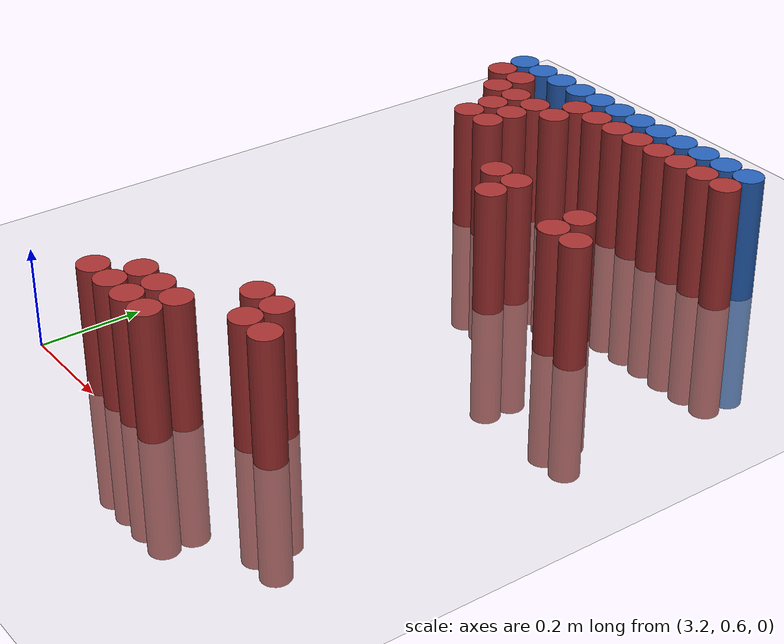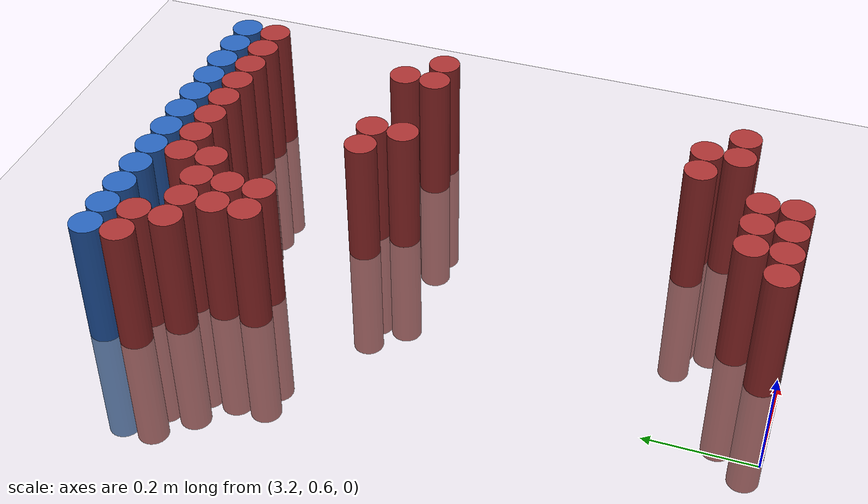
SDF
<sdf version="1.6">
 <world name="default">
  <model name="ground_plane">
   <static>1</static>
   <link name="link">
    <collision name="collision">
     <geometry><plane><normal>0 0 1</normal><size>100 100</size></plane></geometry>
     <surface><friction><ode><mu>100</mu><mu2>50</mu2></ode></friction></surface>
    </collision>
    <visual name="visual">
     <cast_shadows>0</cast_shadows>
     <geometry><plane><normal>0 0 1</normal><size>100 100</size></plane></geometry>
     <material>
      <script><uri>file://media/materials/scripts/gazebo.material</uri><name>Gazebo/Grey</name></script>
     </material>
    </visual>
   </link>
  </model>
  <model name="unit_cylinder_113">
   <static>1</static>
   <pose>3.150000 1.770000 0.000000 0.000000 0.000000 0.000000</pose>
   <link name="link">
    <inertial>
     <mass>1</mass>
     <inertia><ixx>0.145833</ixx><ixy>0</ixy><ixz>0</ixz><iyy>0.145833</iyy><iyz>0</iyz><izz>0.125</izz></inertia>
    </inertial>
    <collision name="collision">
     <geometry><cylinder><radius>0.030000</radius><length>0.5</length></cylinder></geometry>
    </collision>
    <visual name="visual">
     <geometry><cylinder><radius>0.030000</radius><length>0.5</length></cylinder></geometry>
     <material>
      <ambient>0.152000 0.379000 0.720000 1</ambient>
      <diffuse>0.152000 0.379000 0.720000 1</diffuse>
     </material>
     <material>
      <script><name>Gazebo/Grey</name><uri>file://media/materials/scripts/gazebo.material</uri></script>
     </material>
    </visual>
   </link>
  </model>
  <model name="unit_cylinder_114">
   <static>1</static>
   <pose>3.210000 1.770000 0.000000 0.000000 0.000000 0.000000</pose>
   <link name="link">
    <inertial>
     <mass>1</mass>
     <inertia><ixx>0.145833</ixx><ixy>0</ixy><ixz>0</ixz><iyy>0.145833</iyy><iyz>0</iyz><izz>0.125</izz></inertia>
    </inertial>
    <collision name="collision">
     <geometry><cylinder><radius>0.030000</radius><length>0.5</length></cylinder></geometry>
    </collision>
    <visual name="visual">
     <geometry><cylinder><radius>0.030000</radius><length>0.5</length></cylinder></geometry>
     <material>
      <ambient>0.152000 0.379000 0.720000 1</ambient>
      <diffuse>0.152000 0.379000 0.720000 1</diffuse>
     </material>
     <material>
      <script><name>Gazebo/Grey</name><uri>file://media/materials/scripts/gazebo.material</uri></script>
     </material>
    </visual>
   </link>
  </model>
  <model name="unit_cylinder_115">
   <static>1</static>
   <pose>3.270000 1.770000 0.000000 0.000000 0.000000 0.000000</pose>
   <link name="link">
    <inertial>
     <mass>1</mass>
     <inertia><ixx>0.145833</ixx><ixy>0</ixy><ixz>0</ixz><iyy>0.145833</iyy><iyz>0</iyz><izz>0.125</izz></inertia>
    </inertial>
    <collision name="collision">
     <geometry><cylinder><radius>0.030000</radius><length>0.5</length></cylinder></geometry>
    </collision>
    <visual name="visual">
     <geometry><cylinder><radius>0.030000</radius><length>0.5</length></cylinder></geometry>
     <material>
      <ambient>0.152000 0.379000 0.720000 1</ambient>
      <diffuse>0.152000 0.379000 0.720000 1</diffuse>
     </material>
     <material>
      <script><name>Gazebo/Grey</name><uri>file://media/materials/scripts/gazebo.material</uri></script>
     </material>
    </visual>
   </link>
  </model>
  <model name="unit_cylinder_116">
   <static>1</static>
   <pose>3.330000 1.770000 0.000000 0.000000 0.000000 0.000000</pose>
   <link name="link">
    <inertial>
     <mass>1</mass>
     <inertia><ixx>0.145833</ixx><ixy>0</ixy><ixz>0</ixz><iyy>0.145833</iyy><iyz>0</iyz><izz>0.125</izz></inertia>
    </inertial>
    <collision name="collision">
     <geometry><cylinder><radius>0.030000</radius><length>0.5</length></cylinder></geometry>
    </collision>
    <visual name="visual">
     <geometry><cylinder><radius>0.030000</radius><length>0.5</length></cylinder></geometry>
     <material>
      <ambient>0.152000 0.379000 0.720000 1</ambient>
      <diffuse>0.152000 0.379000 0.720000 1</diffuse>
     </material>
     <material>
      <script><name>Gazebo/Grey</name><uri>file://media/materials/scripts/gazebo.material</uri></script>
     </material>
    </visual>
   </link>
  </model>
  <model name="unit_cylinder_117">
   <static>1</static>
   <pose>3.390000 1.770000 0.000000 0.000000 0.000000 0.000000</pose>
   <link name="link">
    <inertial>
     <mass>1</mass>
     <inertia><ixx>0.145833</ixx><ixy>0</ixy><ixz>0</ixz><iyy>0.145833</iyy><iyz>0</iyz><izz>0.125</izz></inertia>
    </inertial>
    <collision name="collision">
     <geometry><cylinder><radius>0.030000</radius><length>0.5</length></cylinder></geometry>
    </collision>
    <visual name="visual">
     <geometry><cylinder><radius>0.030000</radius><length>0.5</length></cylinder></geometry>
     <material>
      <ambient>0.152000 0.379000 0.720000 1</ambient>
      <diffuse>0.152000 0.379000 0.720000 1</diffuse>
     </material>
     <material>
      <script><name>Gazebo/Grey</name><uri>file://media/materials/scripts/gazebo.material</uri></script>
     </material>
    </visual>
   </link>
  </model>
  <model name="unit_cylinder_118">
   <static>1</static>
   <pose>3.450000 1.770000 0.000000 0.000000 0.000000 0.000000</pose>
   <link name="link">
    <inertial>
     <mass>1</mass>
     <inertia><ixx>0.145833</ixx><ixy>0</ixy><ixz>0</ixz><iyy>0.145833</iyy><iyz>0</iyz><izz>0.125</izz></inertia>
    </inertial>
    <collision name="collision">
     <geometry><cylinder><radius>0.030000</radius><length>0.5</length></cylinder></geometry>
    </collision>
    <visual name="visual">
     <geometry><cylinder><radius>0.030000</radius><length>0.5</length></cylinder></geometry>
     <material>
      <ambient>0.152000 0.379000 0.720000 1</ambient>
      <diffuse>0.152000 0.379000 0.720000 1</diffuse>
     </material>
     <material>
      <script><name>Gazebo/Grey</name><uri>file://media/materials/scripts/gazebo.material</uri></script>
     </material>
    </visual>
   </link>
  </model>
  <model name="unit_cylinder_119">
   <static>1</static>
   <pose>3.510000 1.770000 0.000000 0.000000 0.000000 0.000000</pose>
   <link name="link">
    <inertial>
     <mass>1</mass>
     <inertia><ixx>0.145833</ixx><ixy>0</ixy><ixz>0</ixz><iyy>0.145833</iyy><iyz>0</iyz><izz>0.125</izz></inertia>
    </inertial>
    <collision name="collision">
     <geometry><cylinder><radius>0.030000</radius><length>0.5</length></cylinder></geometry>
    </collision>
    <visual name="visual">
     <geometry><cylinder><radius>0.030000</radius><length>0.5</length></cylinder></geometry>
     <material>
      <ambient>0.152000 0.379000 0.720000 1</ambient>
      <diffuse>0.152000 0.379000 0.720000 1</diffuse>
     </material>
     <material>
      <script><name>Gazebo/Grey</name><uri>file://media/materials/scripts/gazebo.material</uri></script>
     </material>
    </visual>
   </link>
  </model>
  <model name="unit_cylinder_120">
   <static>1</static>
   <pose>3.570000 1.770000 0.000000 0.000000 0.000000 0.000000</pose>
   <link name="link">
    <inertial>
     <mass>1</mass>
     <inertia><ixx>0.145833</ixx><ixy>0</ixy><ixz>0</ixz><iyy>0.145833</iyy><iyz>0</iyz><izz>0.125</izz></inertia>
    </inertial>
    <collision name="collision">
     <geometry><cylinder><radius>0.030000</radius><length>0.5</length></cylinder></geometry>
    </collision>
    <visual name="visual">
     <geometry><cylinder><radius>0.030000</radius><length>0.5</length></cylinder></geometry>
     <material>
      <ambient>0.152000 0.379000 0.720000 1</ambient>
      <diffuse>0.152000 0.379000 0.720000 1</diffuse>
     </material>
     <material>
      <script><name>Gazebo/Grey</name><uri>file://media/materials/scripts/gazebo.material</uri></script>
     </material>
    </visual>
   </link>
  </model>
  <model name="unit_cylinder_121">
   <static>1</static>
   <pose>3.630000 1.770000 0.000000 0.000000 0.000000 0.000000</pose>
   <link name="link">
    <inertial>
     <mass>1</mass>
     <inertia><ixx>0.145833</ixx><ixy>0</ixy><ixz>0</ixz><iyy>0.145833</iyy><iyz>0</iyz><izz>0.125</izz></inertia>
    </inertial>
    <collision name="collision">
     <geometry><cylinder><radius>0.030000</radius><length>0.5</length></cylinder></geometry>
    </collision>
    <visual name="visual">
     <geometry><cylinder><radius>0.030000</radius><length>0.5</length></cylinder></geometry>
     <material>
      <ambient>0.152000 0.379000 0.720000 1</ambient>
      <diffuse>0.152000 0.379000 0.720000 1</diffuse>
     </material>
     <material>
      <script><name>Gazebo/Grey</name><uri>file://media/materials/scripts/gazebo.material</uri></script>
     </material>
    </visual>
   </link>
  </model>
  <model name="unit_cylinder_122">
   <static>1</static>
   <pose>3.690000 1.770000 0.000000 0.000000 0.000000 0.000000</pose>
   <link name="link">
    <inertial>
     <mass>1</mass>
     <inertia><ixx>0.145833</ixx><ixy>0</ixy><ixz>0</ixz><iyy>0.145833</iyy><iyz>0</iyz><izz>0.125</izz></inertia>
    </inertial>
    <collision name="collision">
     <geometry><cylinder><radius>0.030000</radius><length>0.5</length></cylinder></geometry>
    </collision>
    <visual name="visual">
     <geometry><cylinder><radius>0.030000</radius><length>0.5</length></cylinder></geometry>
     <material>
      <ambient>0.152000 0.379000 0.720000 1</ambient>
      <diffuse>0.152000 0.379000 0.720000 1</diffuse>
     </material>
     <material>
      <script><name>Gazebo/Grey</name><uri>file://media/materials/scripts/gazebo.material</uri></script>
     </material>
    </visual>
   </link>
  </model>
  <model name="unit_cylinder_123">
   <static>1</static>
   <pose>3.750000 1.770000 0.000000 0.000000 0.000000 0.000000</pose>
   <link name="link">
    <inertial>
     <mass>1</mass>
     <inertia><ixx>0.145833</ixx><ixy>0</ixy><ixz>0</ixz><iyy>0.145833</iyy><iyz>0</iyz><izz>0.125</izz></inertia>
    </inertial>
    <collision name="collision">
     <geometry><cylinder><radius>0.030000</radius><length>0.5</length></cylinder></geometry>
    </collision>
    <visual name="visual">
     <geometry><cylinder><radius>0.030000</radius><length>0.5</length></cylinder></geometry>
     <material>
      <ambient>0.152000 0.379000 0.720000 1</ambient>
      <diffuse>0.152000 0.379000 0.720000 1</diffuse>
     </material>
     <material>
      <script><name>Gazebo/Grey</name><uri>file://media/materials/scripts/gazebo.material</uri></script>
     </material>
    </visual>
   </link>
  </model>
  <model name="unit_cylinder_124">
   <static>1</static>
   <pose>3.810000 1.770000 0.000000 0.000000 0.000000 0.000000</pose>
   <link name="link">
    <inertial>
     <mass>1</mass>
     <inertia><ixx>0.145833</ixx><ixy>0</ixy><ixz>0</ixz><iyy>0.145833</iyy><iyz>0</iyz><izz>0.125</izz></inertia>
    </inertial>
    <collision name="collision">
     <geometry><cylinder><radius>0.030000</radius><length>0.5</length></cylinder></geometry>
    </collision>
    <visual name="visual">
     <geometry><cylinder><radius>0.030000</radius><length>0.5</length></cylinder></geometry>
     <material>
      <ambient>0.152000 0.379000 0.720000 1</ambient>
      <diffuse>0.152000 0.379000 0.720000 1</diffuse>
     </material>
     <material>
      <script><name>Gazebo/Grey</name><uri>file://media/materials/scripts/gazebo.material</uri></script>
     </material>
    </visual>
   </link>
  </model>
  <model name="unit_cylinder_127">
   <static>1</static>
   <pose>3.150000 1.710000 0.000000 0.000000 0.000000 0.000000</pose>
   <link name="link">
    <inertial>
     <mass>1</mass>
     <inertia><ixx>0.145833</ixx><ixy>0</ixy><ixz>0</ixz><iyy>0.145833</iyy><iyz>0</iyz><izz>0.125</izz></inertia>
    </inertial>
    <collision name="collision">
     <geometry><cylinder><radius>0.030000</radius><length>0.5</length></cylinder></geometry>
    </collision>
    <visual name="visual">
     <geometry><cylinder><radius>0.030000</radius><length>0.5</length></cylinder></geometry>
     <material>
      <ambient>0.648000 0.192000 0.192000 1</ambient>
      <diffuse>0.648000 0.192000 0.192000 1</diffuse>
     </material>
     <material>
      <script><name>Gazebo/Grey</name><uri>file://media/materials/scripts/gazebo.material</uri></script>
     </material>
    </visual>
   </link>
  </model>
  <model name="unit_cylinder_128">
   <static>1</static>
   <pose>3.210000 1.710000 0.000000 0.000000 0.000000 0.000000</pose>
   <link name="link">
    <inertial>
     <mass>1</mass>
     <inertia><ixx>0.145833</ixx><ixy>0</ixy><ixz>0</ixz><iyy>0.145833</iyy><iyz>0</iyz><izz>0.125</izz></inertia>
    </inertial>
    <collision name="collision">
     <geometry><cylinder><radius>0.030000</radius><length>0.5</length></cylinder></geometry>
    </collision>
    <visual name="visual">
     <geometry><cylinder><radius>0.030000</radius><length>0.5</length></cylinder></geometry>
     <material>
      <ambient>0.648000 0.192000 0.192000 1</ambient>
      <diffuse>0.648000 0.192000 0.192000 1</diffuse>
     </material>
     <material>
      <script><name>Gazebo/Grey</name><uri>file://media/materials/scripts/gazebo.material</uri></script>
     </material>
    </visual>
   </link>
  </model>
  <model name="unit_cylinder_129">
   <static>1</static>
   <pose>3.390000 1.710000 0.000000 0.000000 0.000000 0.000000</pose>
   <link name="link">
    <inertial>
     <mass>1</mass>
     <inertia><ixx>0.145833</ixx><ixy>0</ixy><ixz>0</ixz><iyy>0.145833</iyy><iyz>0</iyz><izz>0.125</izz></inertia>
    </inertial>
    <collision name="collision">
     <geometry><cylinder><radius>0.030000</radius><length>0.5</length></cylinder></geometry>
    </collision>
    <visual name="visual">
     <geometry><cylinder><radius>0.030000</radius><length>0.5</length></cylinder></geometry>
     <material>
      <ambient>0.648000 0.192000 0.192000 1</ambient>
      <diffuse>0.648000 0.192000 0.192000 1</diffuse>
     </material>
     <material>
      <script><name>Gazebo/Grey</name><uri>file://media/materials/scripts/gazebo.material</uri></script>
     </material>
    </visual>
   </link>
  </model>
  <model name="unit_cylinder_130">
   <static>1</static>
   <pose>3.450000 1.710000 0.000000 0.000000 0.000000 0.000000</pose>
   <link name="link">
    <inertial>
     <mass>1</mass>
     <inertia><ixx>0.145833</ixx><ixy>0</ixy><ixz>0</ixz><iyy>0.145833</iyy><iyz>0</iyz><izz>0.125</izz></inertia>
    </inertial>
    <collision name="collision">
     <geometry><cylinder><radius>0.030000</radius><length>0.5</length></cylinder></geometry>
    </collision>
    <visual name="visual">
     <geometry><cylinder><radius>0.030000</radius><length>0.5</length></cylinder></geometry>
     <material>
      <ambient>0.648000 0.192000 0.192000 1</ambient>
      <diffuse>0.648000 0.192000 0.192000 1</diffuse>
     </material>
     <material>
      <script><name>Gazebo/Grey</name><uri>file://media/materials/scripts/gazebo.material</uri></script>
     </material>
    </visual>
   </link>
  </model>
  <model name="unit_cylinder_131">
   <static>1</static>
   <pose>3.510000 1.710000 0.000000 0.000000 0.000000 0.000000</pose>
   <link name="link">
    <inertial>
     <mass>1</mass>
     <inertia><ixx>0.145833</ixx><ixy>0</ixy><ixz>0</ixz><iyy>0.145833</iyy><iyz>0</iyz><izz>0.125</izz></inertia>
    </inertial>
    <collision name="collision">
     <geometry><cylinder><radius>0.030000</radius><length>0.5</length></cylinder></geometry>
    </collision>
    <visual name="visual">
     <geometry><cylinder><radius>0.030000</radius><length>0.5</length></cylinder></geometry>
     <material>
      <ambient>0.648000 0.192000 0.192000 1</ambient>
      <diffuse>0.648000 0.192000 0.192000 1</diffuse>
     </material>
     <material>
      <script><name>Gazebo/Grey</name><uri>file://media/materials/scripts/gazebo.material</uri></script>
     </material>
    </visual>
   </link>
  </model>
  <model name="unit_cylinder_132">
   <static>1</static>
   <pose>3.570000 1.710000 0.000000 0.000000 0.000000 0.000000</pose>
   <link name="link">
    <inertial>
     <mass>1</mass>
     <inertia><ixx>0.145833</ixx><ixy>0</ixy><ixz>0</ixz><iyy>0.145833</iyy><iyz>0</iyz><izz>0.125</izz></inertia>
    </inertial>
    <collision name="collision">
     <geometry><cylinder><radius>0.030000</radius><length>0.5</length></cylinder></geometry>
    </collision>
    <visual name="visual">
     <geometry><cylinder><radius>0.030000</radius><length>0.5</length></cylinder></geometry>
     <material>
      <ambient>0.648000 0.192000 0.192000 1</ambient>
      <diffuse>0.648000 0.192000 0.192000 1</diffuse>
     </material>
     <material>
      <script><name>Gazebo/Grey</name><uri>file://media/materials/scripts/gazebo.material</uri></script>
     </material>
    </visual>
   </link>
  </model>
  <model name="unit_cylinder_133">
   <static>1</static>
   <pose>3.630000 1.710000 0.000000 0.000000 0.000000 0.000000</pose>
   <link name="link">
    <inertial>
     <mass>1</mass>
     <inertia><ixx>0.145833</ixx><ixy>0</ixy><ixz>0</ixz><iyy>0.145833</iyy><iyz>0</iyz><izz>0.125</izz></inertia>
    </inertial>
    <collision name="collision">
     <geometry><cylinder><radius>0.030000</radius><length>0.5</length></cylinder></geometry>
    </collision>
    <visual name="visual">
     <geometry><cylinder><radius>0.030000</radius><length>0.5</length></cylinder></geometry>
     <material>
      <ambient>0.648000 0.192000 0.192000 1</ambient>
      <diffuse>0.648000 0.192000 0.192000 1</diffuse>
     </material>
     <material>
      <script><name>Gazebo/Grey</name><uri>file://media/materials/scripts/gazebo.material</uri></script>
     </material>
    </visual>
   </link>
  </model>
  <model name="unit_cylinder_134">
   <static>1</static>
   <pose>3.690000 1.710000 0.000000 0.000000 0.000000 0.000000</pose>
   <link name="link">
    <inertial>
     <mass>1</mass>
     <inertia><ixx>0.145833</ixx><ixy>0</ixy><ixz>0</ixz><iyy>0.145833</iyy><iyz>0</iyz><izz>0.125</izz></inertia>
    </inertial>
    <collision name="collision">
     <geometry><cylinder><radius>0.030000</radius><length>0.5</length></cylinder></geometry>
    </collision>
    <visual name="visual">
     <geometry><cylinder><radius>0.030000</radius><length>0.5</length></cylinder></geometry>
     <material>
      <ambient>0.648000 0.192000 0.192000 1</ambient>
      <diffuse>0.648000 0.192000 0.192000 1</diffuse>
     </material>
     <material>
      <script><name>Gazebo/Grey</name><uri>file://media/materials/scripts/gazebo.material</uri></script>
     </material>
    </visual>
   </link>
  </model>
  <model name="unit_cylinder_135">
   <static>1</static>
   <pose>3.750000 1.710000 0.000000 0.000000 0.000000 0.000000</pose>
   <link name="link">
    <inertial>
     <mass>1</mass>
     <inertia><ixx>0.145833</ixx><ixy>0</ixy><ixz>0</ixz><iyy>0.145833</iyy><iyz>0</iyz><izz>0.125</izz></inertia>
    </inertial>
    <collision name="collision">
     <geometry><cylinder><radius>0.030000</radius><length>0.5</length></cylinder></geometry>
    </collision>
    <visual name="visual">
     <geometry><cylinder><radius>0.030000</radius><length>0.5</length></cylinder></geometry>
     <material>
      <ambient>0.648000 0.192000 0.192000 1</ambient>
      <diffuse>0.648000 0.192000 0.192000 1</diffuse>
     </material>
     <material>
      <script><name>Gazebo/Grey</name><uri>file://media/materials/scripts/gazebo.material</uri></script>
     </material>
    </visual>
   </link>
  </model>
  <model name="unit_cylinder_136">
   <static>1</static>
   <pose>3.810000 1.710000 0.000000 0.000000 0.000000 0.000000</pose>
   <link name="link">
    <inertial>
     <mass>1</mass>
     <inertia><ixx>0.145833</ixx><ixy>0</ixy><ixz>0</ixz><iyy>0.145833</iyy><iyz>0</iyz><izz>0.125</izz></inertia>
    </inertial>
    <collision name="collision">
     <geometry><cylinder><radius>0.030000</radius><length>0.5</length></cylinder></geometry>
    </collision>
    <visual name="visual">
     <geometry><cylinder><radius>0.030000</radius><length>0.5</length></cylinder></geometry>
     <material>
      <ambient>0.648000 0.192000 0.192000 1</ambient>
      <diffuse>0.648000 0.192000 0.192000 1</diffuse>
     </material>
     <material>
      <script><name>Gazebo/Grey</name><uri>file://media/materials/scripts/gazebo.material</uri></script>
     </material>
    </visual>
   </link>
  </model>
  <model name="unit_cylinder_139">
   <static>1</static>
   <pose>3.210000 1.650000 0.000000 0.000000 0.000000 0.000000</pose>
   <link name="link">
    <inertial>
     <mass>1</mass>
     <inertia><ixx>0.145833</ixx><ixy>0</ixy><ixz>0</ixz><iyy>0.145833</iyy><iyz>0</iyz><izz>0.125</izz></inertia>
    </inertial>
    <collision name="collision">
     <geometry><cylinder><radius>0.030000</radius><length>0.5</length></cylinder></geometry>
    </collision>
    <visual name="visual">
     <geometry><cylinder><radius>0.030000</radius><length>0.5</length></cylinder></geometry>
     <material>
      <ambient>0.648000 0.192000 0.192000 1</ambient>
      <diffuse>0.648000 0.192000 0.192000 1</diffuse>
     </material>
     <material>
      <script><name>Gazebo/Grey</name><uri>file://media/materials/scripts/gazebo.material</uri></script>
     </material>
    </visual>
   </link>
  </model>
  <model name="unit_cylinder_140">
   <static>1</static>
   <pose>3.270000 1.650000 0.000000 0.000000 0.000000 0.000000</pose>
   <link name="link">
    <inertial>
     <mass>1</mass>
     <inertia><ixx>0.145833</ixx><ixy>0</ixy><ixz>0</ixz><iyy>0.145833</iyy><iyz>0</iyz><izz>0.125</izz></inertia>
    </inertial>
    <collision name="collision">
     <geometry><cylinder><radius>0.030000</radius><length>0.5</length></cylinder></geometry>
    </collision>
    <visual name="visual">
     <geometry><cylinder><radius>0.030000</radius><length>0.5</length></cylinder></geometry>
     <material>
      <ambient>0.648000 0.192000 0.192000 1</ambient>
      <diffuse>0.648000 0.192000 0.192000 1</diffuse>
     </material>
     <material>
      <script><name>Gazebo/Grey</name><uri>file://media/materials/scripts/gazebo.material</uri></script>
     </material>
    </visual>
   </link>
  </model>
  <model name="unit_cylinder_141">
   <static>1</static>
   <pose>3.330000 1.650000 0.000000 0.000000 0.000000 0.000000</pose>
   <link name="link">
    <inertial>
     <mass>1</mass>
     <inertia><ixx>0.145833</ixx><ixy>0</ixy><ixz>0</ixz><iyy>0.145833</iyy><iyz>0</iyz><izz>0.125</izz></inertia>
    </inertial>
    <collision name="collision">
     <geometry><cylinder><radius>0.030000</radius><length>0.5</length></cylinder></geometry>
    </collision>
    <visual name="visual">
     <geometry><cylinder><radius>0.030000</radius><length>0.5</length></cylinder></geometry>
     <material>
      <ambient>0.648000 0.192000 0.192000 1</ambient>
      <diffuse>0.648000 0.192000 0.192000 1</diffuse>
     </material>
     <material>
      <script><name>Gazebo/Grey</name><uri>file://media/materials/scripts/gazebo.material</uri></script>
     </material>
    </visual>
   </link>
  </model>
  <model name="unit_cylinder_142">
   <static>1</static>
   <pose>3.390000 1.650000 0.000000 0.000000 0.000000 0.000000</pose>
   <link name="link">
    <inertial>
     <mass>1</mass>
     <inertia><ixx>0.145833</ixx><ixy>0</ixy><ixz>0</ixz><iyy>0.145833</iyy><iyz>0</iyz><izz>0.125</izz></inertia>
    </inertial>
    <collision name="collision">
     <geometry><cylinder><radius>0.030000</radius><length>0.5</length></cylinder></geometry>
    </collision>
    <visual name="visual">
     <geometry><cylinder><radius>0.030000</radius><length>0.5</length></cylinder></geometry>
     <material>
      <ambient>0.648000 0.192000 0.192000 1</ambient>
      <diffuse>0.648000 0.192000 0.192000 1</diffuse>
     </material>
     <material>
      <script><name>Gazebo/Grey</name><uri>file://media/materials/scripts/gazebo.material</uri></script>
     </material>
    </visual>
   </link>
  </model>
  <model name="unit_cylinder_155">
   <static>1</static>
   <pose>3.270000 1.590000 0.000000 0.000000 0.000000 0.000000</pose>
   <link name="link">
    <inertial>
     <mass>1</mass>
     <inertia><ixx>0.145833</ixx><ixy>0</ixy><ixz>0</ixz><iyy>0.145833</iyy><iyz>0</iyz><izz>0.125</izz></inertia>
    </inertial>
    <collision name="collision">
     <geometry><cylinder><radius>0.030000</radius><length>0.5</length></cylinder></geometry>
    </collision>
    <visual name="visual">
     <geometry><cylinder><radius>0.030000</radius><length>0.5</length></cylinder></geometry>
     <material>
      <ambient>0.648000 0.192000 0.192000 1</ambient>
      <diffuse>0.648000 0.192000 0.192000 1</diffuse>
     </material>
     <material>
      <script><name>Gazebo/Grey</name><uri>file://media/materials/scripts/gazebo.material</uri></script>
     </material>
    </visual>
   </link>
  </model>
  <model name="unit_cylinder_156">
   <static>1</static>
   <pose>3.330000 1.590000 0.000000 0.000000 0.000000 0.000000</pose>
   <link name="link">
    <inertial>
     <mass>1</mass>
     <inertia><ixx>0.145833</ixx><ixy>0</ixy><ixz>0</ixz><iyy>0.145833</iyy><iyz>0</iyz><izz>0.125</izz></inertia>
    </inertial>
    <collision name="collision">
     <geometry><cylinder><radius>0.030000</radius><length>0.5</length></cylinder></geometry>
    </collision>
    <visual name="visual">
     <geometry><cylinder><radius>0.030000</radius><length>0.5</length></cylinder></geometry>
     <material>
      <ambient>0.648000 0.192000 0.192000 1</ambient>
      <diffuse>0.648000 0.192000 0.192000 1</diffuse>
     </material>
     <material>
      <script><name>Gazebo/Grey</name><uri>file://media/materials/scripts/gazebo.material</uri></script>
     </material>
    </visual>
   </link>
  </model>
  <model name="unit_cylinder_168">
   <static>1</static>
   <pose>3.270000 1.530000 0.000000 0.000000 0.000000 0.000000</pose>
   <link name="link">
    <inertial>
     <mass>1</mass>
     <inertia><ixx>0.145833</ixx><ixy>0</ixy><ixz>0</ixz><iyy>0.145833</iyy><iyz>0</iyz><izz>0.125</izz></inertia>
    </inertial>
    <collision name="collision">
     <geometry><cylinder><radius>0.030000</radius><length>0.5</length></cylinder></geometry>
    </collision>
    <visual name="visual">
     <geometry><cylinder><radius>0.030000</radius><length>0.5</length></cylinder></geometry>
     <material>
      <ambient>0.648000 0.192000 0.192000 1</ambient>
      <diffuse>0.648000 0.192000 0.192000 1</diffuse>
     </material>
     <material>
      <script><name>Gazebo/Grey</name><uri>file://media/materials/scripts/gazebo.material</uri></script>
     </material>
    </visual>
   </link>
  </model>
  <model name="unit_cylinder_169">
   <static>1</static>
   <pose>3.330000 1.530000 0.000000 0.000000 0.000000 0.000000</pose>
   <link name="link">
    <inertial>
     <mass>1</mass>
     <inertia><ixx>0.145833</ixx><ixy>0</ixy><ixz>0</ixz><iyy>0.145833</iyy><iyz>0</iyz><izz>0.125</izz></inertia>
    </inertial>
    <collision name="collision">
     <geometry><cylinder><radius>0.030000</radius><length>0.5</length></cylinder></geometry>
    </collision>
    <visual name="visual">
     <geometry><cylinder><radius>0.030000</radius><length>0.5</length></cylinder></geometry>
     <material>
      <ambient>0.648000 0.192000 0.192000 1</ambient>
      <diffuse>0.648000 0.192000 0.192000 1</diffuse>
     </material>
     <material>
      <script><name>Gazebo/Grey</name><uri>file://media/materials/scripts/gazebo.material</uri></script>
     </material>
    </visual>
   </link>
  </model>
  <model name="unit_cylinder_174">
   <static>1</static>
   <pose>3.510000 1.410000 0.000000 0.000000 0.000000 0.000000</pose>
   <link name="link">
    <inertial>
     <mass>1</mass>
     <inertia><ixx>0.145833</ixx><ixy>0</ixy><ixz>0</ixz><iyy>0.145833</iyy><iyz>0</iyz><izz>0.125</izz></inertia>
    </inertial>
    <collision name="collision">
     <geometry><cylinder><radius>0.030000</radius><length>0.5</length></cylinder></geometry>
    </collision>
    <visual name="visual">
     <geometry><cylinder><radius>0.030000</radius><length>0.5</length></cylinder></geometry>
     <material>
      <ambient>0.648000 0.192000 0.192000 1</ambient>
      <diffuse>0.648000 0.192000 0.192000 1</diffuse>
     </material>
     <material>
      <script><name>Gazebo/Grey</name><uri>file://media/materials/scripts/gazebo.material</uri></script>
     </material>
    </visual>
   </link>
  </model>
  <model name="unit_cylinder_175">
   <static>1</static>
   <pose>3.570000 1.410000 0.000000 0.000000 0.000000 0.000000</pose>
   <link name="link">
    <inertial>
     <mass>1</mass>
     <inertia><ixx>0.145833</ixx><ixy>0</ixy><ixz>0</ixz><iyy>0.145833</iyy><iyz>0</iyz><izz>0.125</izz></inertia>
    </inertial>
    <collision name="collision">
     <geometry><cylinder><radius>0.030000</radius><length>0.5</length></cylinder></geometry>
    </collision>
    <visual name="visual">
     <geometry><cylinder><radius>0.030000</radius><length>0.5</length></cylinder></geometry>
     <material>
      <ambient>0.648000 0.192000 0.192000 1</ambient>
      <diffuse>0.648000 0.192000 0.192000 1</diffuse>
     </material>
     <material>
      <script><name>Gazebo/Grey</name><uri>file://media/materials/scripts/gazebo.material</uri></script>
     </material>
    </visual>
   </link>
  </model>
  <model name="unit_cylinder_176">
   <static>1</static>
   <pose>3.750000 1.410000 0.000000 0.000000 0.000000 0.000000</pose>
   <link name="link">
    <inertial>
     <mass>1</mass>
     <inertia><ixx>0.145833</ixx><ixy>0</ixy><ixz>0</ixz><iyy>0.145833</iyy><iyz>0</iyz><izz>0.125</izz></inertia>
    </inertial>
    <collision name="collision">
     <geometry><cylinder><radius>0.030000</radius><length>0.5</length></cylinder></geometry>
    </collision>
    <visual name="visual">
     <geometry><cylinder><radius>0.030000</radius><length>0.5</length></cylinder></geometry>
     <material>
      <ambient>0.648000 0.192000 0.192000 1</ambient>
      <diffuse>0.648000 0.192000 0.192000 1</diffuse>
     </material>
     <material>
      <script><name>Gazebo/Grey</name><uri>file://media/materials/scripts/gazebo.material</uri></script>
     </material>
    </visual>
   </link>
  </model>
  <model name="unit_cylinder_180">
   <static>1</static>
   <pose>3.570000 1.350000 0.000000 0.000000 0.000000 0.000000</pose>
   <link name="link">
    <inertial>
     <mass>1</mass>
     <inertia><ixx>0.145833</ixx><ixy>0</ixy><ixz>0</ixz><iyy>0.145833</iyy><iyz>0</iyz><izz>0.125</izz></inertia>
    </inertial>
    <collision name="collision">
     <geometry><cylinder><radius>0.030000</radius><length>0.5</length></cylinder></geometry>
    </collision>
    <visual name="visual">
     <geometry><cylinder><radius>0.030000</radius><length>0.5</length></cylinder></geometry>
     <material>
      <ambient>0.648000 0.192000 0.192000 1</ambient>
      <diffuse>0.648000 0.192000 0.192000 1</diffuse>
     </material>
     <material>
      <script><name>Gazebo/Grey</name><uri>file://media/materials/scripts/gazebo.material</uri></script>
     </material>
    </visual>
   </link>
  </model>
  <model name="unit_cylinder_181">
   <static>1</static>
   <pose>3.750000 1.350000 0.000000 0.000000 0.000000 0.000000</pose>
   <link name="link">
    <inertial>
     <mass>1</mass>
     <inertia><ixx>0.145833</ixx><ixy>0</ixy><ixz>0</ixz><iyy>0.145833</iyy><iyz>0</iyz><izz>0.125</izz></inertia>
    </inertial>
    <collision name="collision">
     <geometry><cylinder><radius>0.030000</radius><length>0.5</length></cylinder></geometry>
    </collision>
    <visual name="visual">
     <geometry><cylinder><radius>0.030000</radius><length>0.5</length></cylinder></geometry>
     <material>
      <ambient>0.648000 0.192000 0.192000 1</ambient>
      <diffuse>0.648000 0.192000 0.192000 1</diffuse>
     </material>
     <material>
      <script><name>Gazebo/Grey</name><uri>file://media/materials/scripts/gazebo.material</uri></script>
     </material>
    </visual>
   </link>
  </model>
  <model name="unit_cylinder_182">
   <static>1</static>
   <pose>3.810000 1.350000 0.000000 0.000000 0.000000 0.000000</pose>
   <link name="link">
    <inertial>
     <mass>1</mass>
     <inertia><ixx>0.145833</ixx><ixy>0</ixy><ixz>0</ixz><iyy>0.145833</iyy><iyz>0</iyz><izz>0.125</izz></inertia>
    </inertial>
    <collision name="collision">
     <geometry><cylinder><radius>0.030000</radius><length>0.5</length></cylinder></geometry>
    </collision>
    <visual name="visual">
     <geometry><cylinder><radius>0.030000</radius><length>0.5</length></cylinder></geometry>
     <material>
      <ambient>0.648000 0.192000 0.192000 1</ambient>
      <diffuse>0.648000 0.192000 0.192000 1</diffuse>
     </material>
     <material>
      <script><name>Gazebo/Grey</name><uri>file://media/materials/scripts/gazebo.material</uri></script>
     </material>
    </visual>
   </link>
  </model>
  <model name="unit_cylinder_195">
   <static>1</static>
   <pose>3.630000 0.810000 0.000000 0.000000 0.000000 0.000000</pose>
   <link name="link">
    <inertial>
     <mass>1</mass>
     <inertia><ixx>0.145833</ixx><ixy>0</ixy><ixz>0</ixz><iyy>0.145833</iyy><iyz>0</iyz><izz>0.125</izz></inertia>
    </inertial>
    <collision name="collision">
     <geometry><cylinder><radius>0.030000</radius><length>0.5</length></cylinder></geometry>
    </collision>
    <visual name="visual">
     <geometry><cylinder><radius>0.030000</radius><length>0.5</length></cylinder></geometry>
     <material>
      <ambient>0.648000 0.192000 0.192000 1</ambient>
      <diffuse>0.648000 0.192000 0.192000 1</diffuse>
     </material>
     <material>
      <script><name>Gazebo/Grey</name><uri>file://media/materials/scripts/gazebo.material</uri></script>
     </material>
    </visual>
   </link>
  </model>
  <model name="unit_cylinder_196">
   <static>1</static>
   <pose>3.690000 0.810000 0.000000 0.000000 0.000000 0.000000</pose>
   <link name="link">
    <inertial>
     <mass>1</mass>
     <inertia><ixx>0.145833</ixx><ixy>0</ixy><ixz>0</ixz><iyy>0.145833</iyy><iyz>0</iyz><izz>0.125</izz></inertia>
    </inertial>
    <collision name="collision">
     <geometry><cylinder><radius>0.030000</radius><length>0.5</length></cylinder></geometry>
    </collision>
    <visual name="visual">
     <geometry><cylinder><radius>0.030000</radius><length>0.5</length></cylinder></geometry>
     <material>
      <ambient>0.648000 0.192000 0.192000 1</ambient>
      <diffuse>0.648000 0.192000 0.192000 1</diffuse>
     </material>
     <material>
      <script><name>Gazebo/Grey</name><uri>file://media/materials/scripts/gazebo.material</uri></script>
     </material>
    </visual>
   </link>
  </model>
  <model name="unit_cylinder_201">
   <static>1</static>
   <pose>3.690000 0.750000 0.000000 0.000000 0.000000 0.000000</pose>
   <link name="link">
    <inertial>
     <mass>1</mass>
     <inertia><ixx>0.145833</ixx><ixy>0</ixy><ixz>0</ixz><iyy>0.145833</iyy><iyz>0</iyz><izz>0.125</izz></inertia>
    </inertial>
    <collision name="collision">
     <geometry><cylinder><radius>0.030000</radius><length>0.5</length></cylinder></geometry>
    </collision>
    <visual name="visual">
     <geometry><cylinder><radius>0.030000</radius><length>0.5</length></cylinder></geometry>
     <material>
      <ambient>0.648000 0.192000 0.192000 1</ambient>
      <diffuse>0.648000 0.192000 0.192000 1</diffuse>
     </material>
     <material>
      <script><name>Gazebo/Grey</name><uri>file://media/materials/scripts/gazebo.material</uri></script>
     </material>
    </visual>
   </link>
  </model>
  <model name="unit_cylinder_202">
   <static>1</static>
   <pose>3.750000 0.750000 0.000000 0.000000 0.000000 0.000000</pose>
   <link name="link">
    <inertial>
     <mass>1</mass>
     <inertia><ixx>0.145833</ixx><ixy>0</ixy><ixz>0</ixz><iyy>0.145833</iyy><iyz>0</iyz><izz>0.125</izz></inertia>
    </inertial>
    <collision name="collision">
     <geometry><cylinder><radius>0.030000</radius><length>0.5</length></cylinder></geometry>
    </collision>
    <visual name="visual">
     <geometry><cylinder><radius>0.030000</radius><length>0.5</length></cylinder></geometry>
     <material>
      <ambient>0.648000 0.192000 0.192000 1</ambient>
      <diffuse>0.648000 0.192000 0.192000 1</diffuse>
     </material>
     <material>
      <script><name>Gazebo/Grey</name><uri>file://media/materials/scripts/gazebo.material</uri></script>
     </material>
    </visual>
   </link>
  </model>
  <model name="unit_cylinder_208">
   <static>1</static>
   <pose>3.450000 0.690000 0.000000 0.000000 0.000000 0.000000</pose>
   <link name="link">
    <inertial>
     <mass>1</mass>
     <inertia><ixx>0.145833</ixx><ixy>0</ixy><ixz>0</ixz><iyy>0.145833</iyy><iyz>0</iyz><izz>0.125</izz></inertia>
    </inertial>
    <collision name="collision">
     <geometry><cylinder><radius>0.030000</radius><length>0.5</length></cylinder></geometry>
    </collision>
    <visual name="visual">
     <geometry><cylinder><radius>0.030000</radius><length>0.5</length></cylinder></geometry>
     <material>
      <ambient>0.648000 0.192000 0.192000 1</ambient>
      <diffuse>0.648000 0.192000 0.192000 1</diffuse>
     </material>
     <material>
      <script><name>Gazebo/Grey</name><uri>file://media/materials/scripts/gazebo.material</uri></script>
     </material>
    </visual>
   </link>
  </model>
  <model name="unit_cylinder_209">
   <static>1</static>
   <pose>3.510000 0.690000 0.000000 0.000000 0.000000 0.000000</pose>
   <link name="link">
    <inertial>
     <mass>1</mass>
     <inertia><ixx>0.145833</ixx><ixy>0</ixy><ixz>0</ixz><iyy>0.145833</iyy><iyz>0</iyz><izz>0.125</izz></inertia>
    </inertial>
    <collision name="collision">
     <geometry><cylinder><radius>0.030000</radius><length>0.5</length></cylinder></geometry>
    </collision>
    <visual name="visual">
     <geometry><cylinder><radius>0.030000</radius><length>0.5</length></cylinder></geometry>
     <material>
      <ambient>0.648000 0.192000 0.192000 1</ambient>
      <diffuse>0.648000 0.192000 0.192000 1</diffuse>
     </material>
     <material>
      <script><name>Gazebo/Grey</name><uri>file://media/materials/scripts/gazebo.material</uri></script>
     </material>
    </visual>
   </link>
  </model>
  <model name="unit_cylinder_210">
   <static>1</static>
   <pose>3.570000 0.690000 0.000000 0.000000 0.000000 0.000000</pose>
   <link name="link">
    <inertial>
     <mass>1</mass>
     <inertia><ixx>0.145833</ixx><ixy>0</ixy><ixz>0</ixz><iyy>0.145833</iyy><iyz>0</iyz><izz>0.125</izz></inertia>
    </inertial>
    <collision name="collision">
     <geometry><cylinder><radius>0.030000</radius><length>0.5</length></cylinder></geometry>
    </collision>
    <visual name="visual">
     <geometry><cylinder><radius>0.030000</radius><length>0.5</length></cylinder></geometry>
     <material>
      <ambient>0.648000 0.192000 0.192000 1</ambient>
      <diffuse>0.648000 0.192000 0.192000 1</diffuse>
     </material>
     <material>
      <script><name>Gazebo/Grey</name><uri>file://media/materials/scripts/gazebo.material</uri></script>
     </material>
    </visual>
   </link>
  </model>
  <model name="unit_cylinder_219">
   <static>1</static>
   <pose>3.390000 0.630000 0.000000 0.000000 0.000000 0.000000</pose>
   <link name="link">
    <inertial>
     <mass>1</mass>
     <inertia><ixx>0.145833</ixx><ixy>0</ixy><ixz>0</ixz><iyy>0.145833</iyy><iyz>0</iyz><izz>0.125</izz></inertia>
    </inertial>
    <collision name="collision">
     <geometry><cylinder><radius>0.030000</radius><length>0.5</length></cylinder></geometry>
    </collision>
    <visual name="visual">
     <geometry><cylinder><radius>0.030000</radius><length>0.5</length></cylinder></geometry>
     <material>
      <ambient>0.648000 0.192000 0.192000 1</ambient>
      <diffuse>0.648000 0.192000 0.192000 1</diffuse>
     </material>
     <material>
      <script><name>Gazebo/Grey</name><uri>file://media/materials/scripts/gazebo.material</uri></script>
     </material>
    </visual>
   </link>
  </model>
  <model name="unit_cylinder_220">
   <static>1</static>
   <pose>3.450000 0.630000 0.000000 0.000000 0.000000 0.000000</pose>
   <link name="link">
    <inertial>
     <mass>1</mass>
     <inertia><ixx>0.145833</ixx><ixy>0</ixy><ixz>0</ixz><iyy>0.145833</iyy><iyz>0</iyz><izz>0.125</izz></inertia>
    </inertial>
    <collision name="collision">
     <geometry><cylinder><radius>0.030000</radius><length>0.5</length></cylinder></geometry>
    </collision>
    <visual name="visual">
     <geometry><cylinder><radius>0.030000</radius><length>0.5</length></cylinder></geometry>
     <material>
      <ambient>0.648000 0.192000 0.192000 1</ambient>
      <diffuse>0.648000 0.192000 0.192000 1</diffuse>
     </material>
     <material>
      <script><name>Gazebo/Grey</name><uri>file://media/materials/scripts/gazebo.material</uri></script>
     </material>
    </visual>
   </link>
  </model>
  <model name="unit_cylinder_221">
   <static>1</static>
   <pose>3.510000 0.630000 0.000000 0.000000 0.000000 0.000000</pose>
   <link name="link">
    <inertial>
     <mass>1</mass>
     <inertia><ixx>0.145833</ixx><ixy>0</ixy><ixz>0</ixz><iyy>0.145833</iyy><iyz>0</iyz><izz>0.125</izz></inertia>
    </inertial>
    <collision name="collision">
     <geometry><cylinder><radius>0.030000</radius><length>0.5</length></cylinder></geometry>
    </collision>
    <visual name="visual">
     <geometry><cylinder><radius>0.030000</radius><length>0.5</length></cylinder></geometry>
     <material>
      <ambient>0.648000 0.192000 0.192000 1</ambient>
      <diffuse>0.648000 0.192000 0.192000 1</diffuse>
     </material>
     <material>
      <script><name>Gazebo/Grey</name><uri>file://media/materials/scripts/gazebo.material</uri></script>
     </material>
    </visual>
   </link>
  </model>
  <model name="unit_cylinder_222">
   <static>1</static>
   <pose>3.570000 0.630000 0.000000 0.000000 0.000000 0.000000</pose>
   <link name="link">
    <inertial>
     <mass>1</mass>
     <inertia><ixx>0.145833</ixx><ixy>0</ixy><ixz>0</ixz><iyy>0.145833</iyy><iyz>0</iyz><izz>0.125</izz></inertia>
    </inertial>
    <collision name="collision">
     <geometry><cylinder><radius>0.030000</radius><length>0.5</length></cylinder></geometry>
    </collision>
    <visual name="visual">
     <geometry><cylinder><radius>0.030000</radius><length>0.5</length></cylinder></geometry>
     <material>
      <ambient>0.648000 0.192000 0.192000 1</ambient>
      <diffuse>0.648000 0.192000 0.192000 1</diffuse>
     </material>
     <material>
      <script><name>Gazebo/Grey</name><uri>file://media/materials/scripts/gazebo.material</uri></script>
     </material>
    </visual>
   </link>
  </model>
 </world>
</sdf>
